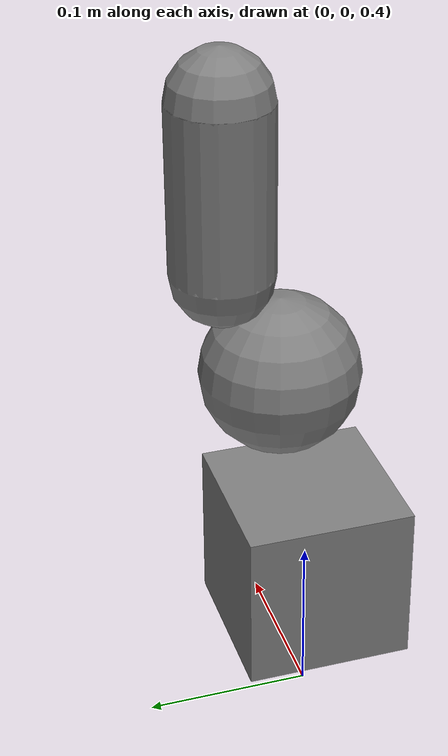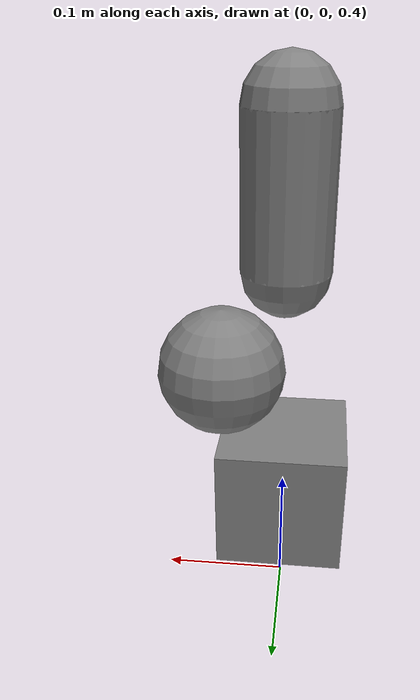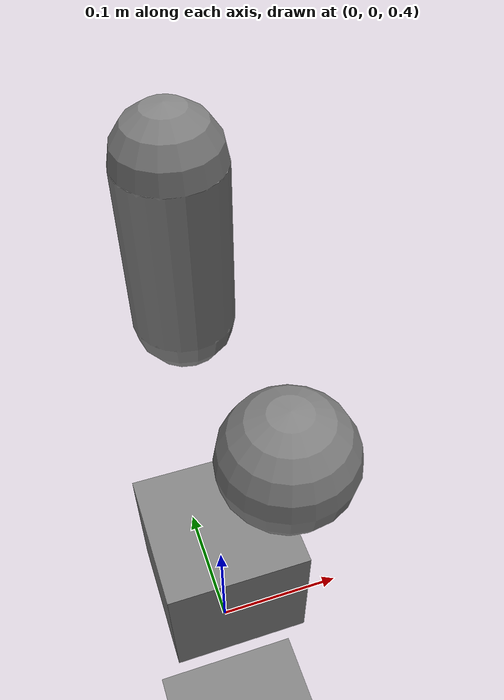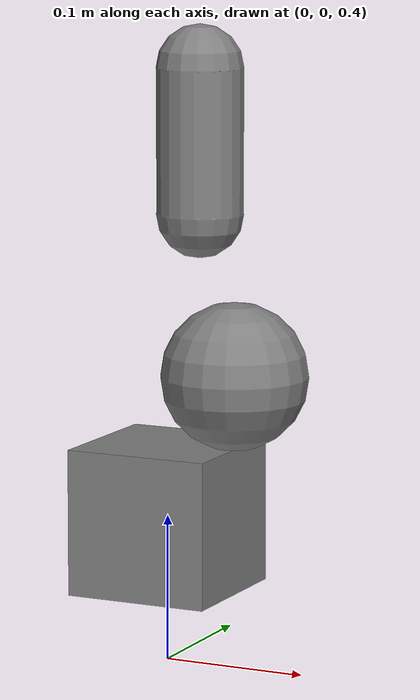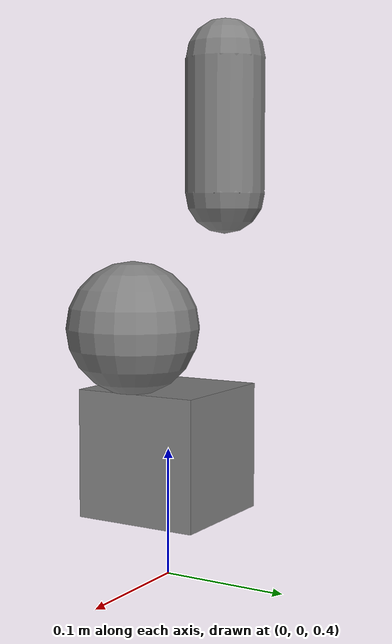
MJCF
<mujoco model="contact_pair_exclude">
  <compiler angle="degree"/>
  <worldbody>
    <geom name="floor" type="plane" size="2 2 0.1"/>
    <body name="ca" pos="0 0 0.5">
      <freejoint/>
      <geom name="ca_g" type="box" size="0.05 0.05 0.05"/>
    </body>
    <body name="cb" pos="0.05 0 0.6">
      <freejoint/>
      <geom name="cb_g" type="sphere" size="0.05"/>
    </body>
    <body name="cc" pos="0 0.05 0.7">
      <freejoint/>
      <geom name="cc_g" type="capsule" size="0.03" fromto="0 0 0 0 0 0.1"/>
    </body>
  </worldbody>
  <contact>
    <pair name="p_ab" geom1="ca_g" geom2="cb_g" friction="1 1 0.005 0.0001 0.0001"
          solref="0.02 1" solimp="0.9 0.95 0.001"/>
    <pair name="p_ac" geom1="ca_g" geom2="cc_g" condim="6"/>
    <exclude name="ex_bc" body1="cb" body2="cc"/>
  </contact>
</mujoco>
